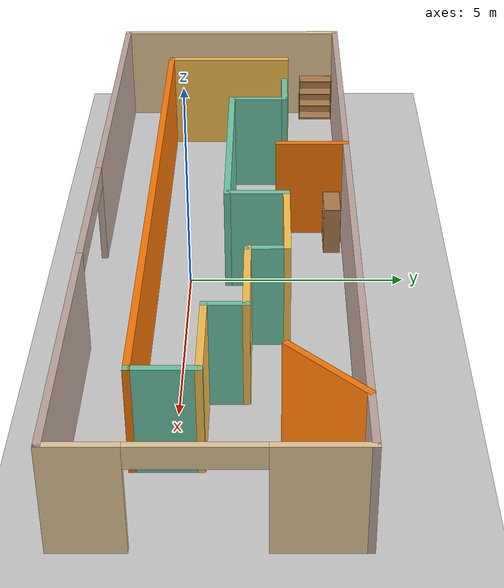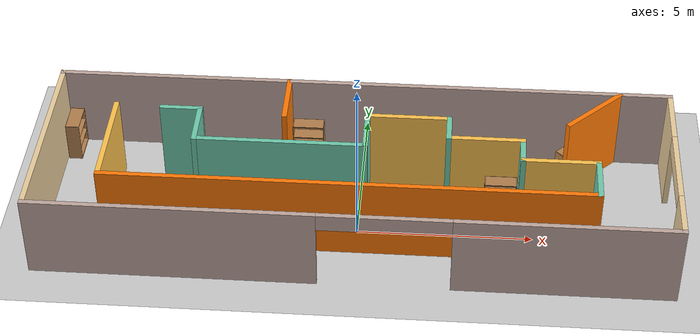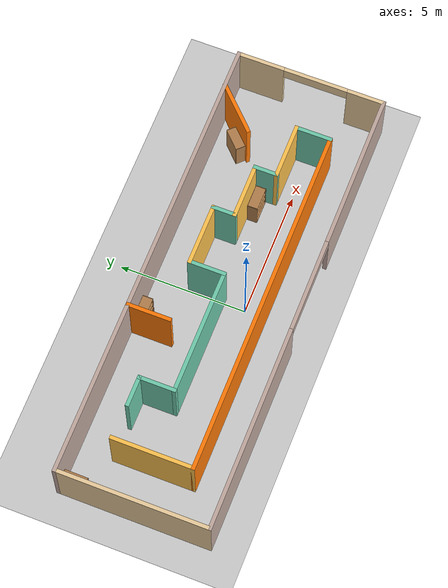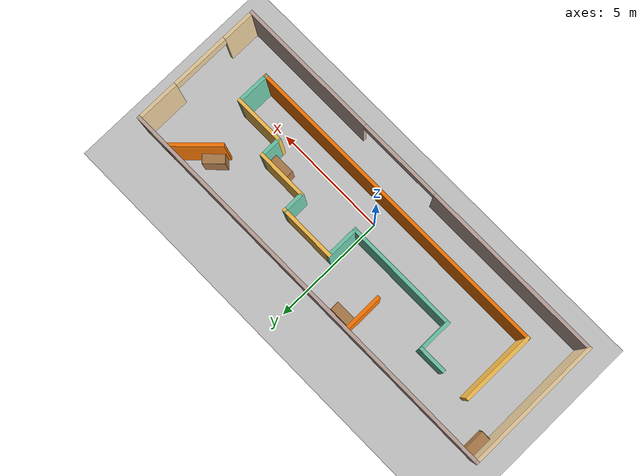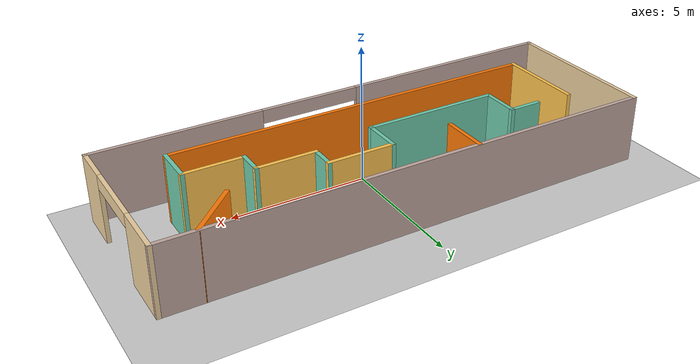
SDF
<sdf version="1.6">
 <world name="default">
  <light name="sun" type="directional">
   <pose>0 0 10 0 -0 0</pose>
   <diffuse>0.8 0.8 0.8 1</diffuse>
   <specular>0.2 0.2 0.2 1</specular>
   <attenuation>
    <range>1000</range>
    <constant>0.9</constant>
    <linear>0.01</linear>
    <quadratic>0.001</quadratic>
   </attenuation>
   <direction>-0.5 0.1 -0.9</direction>
  </light>
  <model name="ground_plane">
   <static>1</static>
   <link name="link">
    <collision name="collision">
     <geometry><plane><normal>0 0 1</normal><size>100 100</size></plane></geometry>
     <surface>
      <contact><collide_bitmask>65535</collide_bitmask></contact>
      <friction><ode><mu>100</mu><mu2>50</mu2></ode></friction>
     </surface>
    </collision>
    <visual name="visual">
     <cast_shadows>0</cast_shadows>
     <geometry><plane><normal>0 0 1</normal><size>100 100</size></plane></geometry>
     <material>
      <script><uri>file://media/materials/scripts/gazebo.material</uri><name>Gazebo/Grey</name></script>
     </material>
    </visual>
   </link>
  </model>
  <gravity>0 0 -9.8</gravity>
  <magnetic_field>6e-06 2.3e-05 -4.2e-05</magnetic_field>
  <atmosphere type="adiabatic"/>
  <physics name="default_physics" default="0" type="ode">
   <max_step_size>0.001</max_step_size>
   <real_time_factor>1</real_time_factor>
   <real_time_update_rate>1000</real_time_update_rate>
  </physics>
  <scene><ambient>0.4 0.4 0.4 1</ambient><background>0.7 0.7 0.7 1</background><shadows>1</shadows></scene>
  <spherical_coordinates>
   <surface_model>EARTH_WGS84</surface_model>
   <latitude_deg>0</latitude_deg>
   <longitude_deg>0</longitude_deg>
   <elevation>0</elevation>
   <heading_deg>0</heading_deg>
  </spherical_coordinates>
  <model name="model">
   <pose>-0.049973 0.789677 0 0 -0 0</pose>
   <link name="Wall_0">
    <collision name="Wall_0_Collision">
     <geometry><box><size>6 0.15 2.5</size></box></geometry>
     <pose>0 0 1.25 0 -0 0</pose>
    </collision>
    <visual name="Wall_0_Visual">
     <pose>0 0 1.25 0 -0 0</pose>
     <geometry><box><size>6 0.15 2.5</size></box></geometry>
     <material>
      <script><uri>file://media/materials/scripts/gazebo.material</uri><name>Gazebo/Grey</name></script>
      <ambient>0.921569 0.807843 0.615686 1</ambient>
     </material>
     <meta><layer>0</layer></meta>
    </visual>
    <pose>-8.925 -0.005476 0 0 0 -1.5708</pose>
   </link>
   <link name="Wall_1">
    <pose>0 -2.93048 0 0 -0 0</pose>
    <visual name="Wall_1_Visual_0">
     <pose>-4.96365 0 1.25 0 -0 0</pose>
     <geometry><box><size>8.0727 0.15 2.5</size></box></geometry>
     <material>
      <script><uri>file://media/materials/scripts/gazebo.material</uri><name>Gazebo/Grey</name></script>
      <ambient>0.760784 0.662745 0.627451 1</ambient>
     </material>
     <meta><layer>0</layer></meta>
    </visual>
    <collision name="Wall_1_Collision_0">
     <geometry><box><size>8.0727 0.15 2.5</size></box></geometry>
     <pose>-4.96365 0 1.25 0 -0 0</pose>
    </collision>
    <visual name="Wall_1_Visual_1">
     <pose>5.88424 0 1.25 0 -0 0</pose>
     <geometry><box><size>6.23151 0.15 2.5</size></box></geometry>
     <material>
      <script><uri>file://media/materials/scripts/gazebo.material</uri><name>Gazebo/Grey</name></script>
      <ambient>0.760784 0.662745 0.627451 1</ambient>
     </material>
     <meta><layer>0</layer></meta>
    </visual>
    <collision name="Wall_1_Collision_1">
     <geometry><box><size>6.23151 0.15 2.5</size></box></geometry>
     <pose>5.88424 0 1.25 0 -0 0</pose>
    </collision>
    <visual name="Wall_1_Visual_2">
     <pose>0.920593 0 2.25 0 -0 0</pose>
     <geometry><box><size>3.69579 0.15 0.5</size></box></geometry>
     <material>
      <script><uri>file://media/materials/scripts/gazebo.material</uri><name>Gazebo/Grey</name></script>
      <ambient>0.760784 0.662745 0.627451 1</ambient>
     </material>
     <meta><layer>0</layer></meta>
    </visual>
    <collision name="Wall_1_Collision_2">
     <geometry><box><size>3.69579 0.15 0.5</size></box></geometry>
     <pose>0.920593 0 2.25 0 -0 0</pose>
    </collision>
   </link>
   <link name="Wall_10">
    <collision name="Wall_10_Collision">
     <geometry><box><size>2.25 0.15 2.5</size></box></geometry>
     <pose>0 0 1.25 0 -0 0</pose>
    </collision>
    <visual name="Wall_10_Visual">
     <pose>0 0 1.25 0 -0 0</pose>
     <geometry><box><size>2.25 0.15 2.5</size></box></geometry>
     <material>
      <script><uri>file://media/materials/scripts/gazebo.material</uri><name>Gazebo/Grey</name></script>
      <ambient>1 0.764706 0.305882 1</ambient>
     </material>
     <meta><layer>0</layer></meta>
    </visual>
    <pose>3.60534 0.611574 0 0 -0 3.14159</pose>
   </link>
   <link name="Wall_11">
    <collision name="Wall_11_Collision">
     <geometry><box><size>1 0.15 2.5</size></box></geometry>
     <pose>0 0 1.25 0 -0 0</pose>
    </collision>
    <visual name="Wall_11_Visual">
     <pose>0 0 1.25 0 -0 0</pose>
     <geometry><box><size>1 0.15 2.5</size></box></geometry>
     <material>
      <script><uri>file://media/materials/scripts/gazebo.material</uri><name>Gazebo/Grey</name></script>
      <ambient>0.435294 0.796078 0.67451 1</ambient>
     </material>
     <meta><layer>0</layer></meta>
    </visual>
    <pose>2.55533 1.03657 0 0 -0 1.5708</pose>
   </link>
   <link name="Wall_12">
    <collision name="Wall_12_Collision">
     <geometry><box><size>2.5 0.15 2.5</size></box></geometry>
     <pose>0 0 1.25 0 -0 0</pose>
    </collision>
    <visual name="Wall_12_Visual">
     <pose>0 0 1.25 0 -0 0</pose>
     <geometry><box><size>2.5 0.15 2.5</size></box></geometry>
     <material>
      <script><uri>file://media/materials/scripts/gazebo.material</uri><name>Gazebo/Grey</name></script>
      <ambient>1 0.764706 0.305882 1</ambient>
     </material>
     <meta><layer>0</layer></meta>
    </visual>
    <pose>1.38034 1.46157 0 0 -0 3.14159</pose>
   </link>
   <link name="Wall_13">
    <collision name="Wall_13_Collision">
     <geometry><box><size>1.5 0.15 2.5</size></box></geometry>
     <pose>0 0 1.25 0 -0 0</pose>
    </collision>
    <visual name="Wall_13_Visual">
     <pose>0 0 1.25 0 -0 0</pose>
     <geometry><box><size>1.5 0.15 2.5</size></box></geometry>
     <material>
      <script><uri>file://media/materials/scripts/gazebo.material</uri><name>Gazebo/Grey</name></script>
      <ambient>0.435294 0.796078 0.67451 1</ambient>
     </material>
     <meta><layer>0</layer></meta>
    </visual>
    <pose>0.205335 0.786574 0 0 0 -1.5708</pose>
   </link>
   <link name="Wall_14">
    <collision name="Wall_14_Collision">
     <geometry><box><size>5 0.15 2.5</size></box></geometry>
     <pose>0 0 1.25 0 -0 0</pose>
    </collision>
    <visual name="Wall_14_Visual">
     <pose>0 0 1.25 0 -0 0</pose>
     <geometry><box><size>5 0.15 2.5</size></box></geometry>
     <material>
      <script><uri>file://media/materials/scripts/gazebo.material</uri><name>Gazebo/Grey</name></script>
      <ambient>0.435294 0.796078 0.67451 1</ambient>
     </material>
     <meta><layer>0</layer></meta>
    </visual>
    <pose>-2.21966 0.111574 0 0 -0 3.14159</pose>
   </link>
   <link name="Wall_15">
    <collision name="Wall_15_Collision">
     <geometry><box><size>1.5 0.15 2.5</size></box></geometry>
     <pose>0 0 1.25 0 -0 0</pose>
    </collision>
    <visual name="Wall_15_Visual">
     <pose>0 0 1.25 0 -0 0</pose>
     <geometry><box><size>1.5 0.15 2.5</size></box></geometry>
     <material>
      <script><uri>file://media/materials/scripts/gazebo.material</uri><name>Gazebo/Grey</name></script>
      <ambient>0.435294 0.796078 0.67451 1</ambient>
     </material>
     <meta><layer>0</layer></meta>
    </visual>
    <pose>-4.64466 0.786574 0 0 -0 1.5708</pose>
   </link>
   <link name="Wall_16">
    <collision name="Wall_16_Collision">
     <geometry><box><size>1.25 0.15 2.5</size></box></geometry>
     <pose>0 0 1.25 0 -0 0</pose>
    </collision>
    <visual name="Wall_16_Visual">
     <pose>0 0 1.25 0 -0 0</pose>
     <geometry><box><size>1.25 0.15 2.5</size></box></geometry>
     <material>
      <script><uri>file://media/materials/scripts/gazebo.material</uri><name>Gazebo/Grey</name></script>
      <ambient>0.435294 0.796078 0.67451 1</ambient>
     </material>
     <meta><layer>0</layer></meta>
    </visual>
    <pose>-5.19466 1.46157 0 0 -0 3.14159</pose>
   </link>
   <link name="Wall_18">
    <collision name="Wall_18_Collision">
     <geometry><box><size>2.25 0.15 2.5</size></box></geometry>
     <pose>0 0 1.25 0 -0 0</pose>
    </collision>
    <visual name="Wall_18_Visual">
     <pose>0 0 1.25 0 -0 0</pose>
     <geometry><box><size>2.25 0.15 2.5</size></box></geometry>
     <material>
      <script><uri>file://media/materials/scripts/gazebo.material</uri><name>Gazebo/Grey</name></script>
      <ambient>0.996078 0.47451 0.0196078 1</ambient>
     </material>
     <meta><layer>0</layer></meta>
    </visual>
    <pose>6.7251 2.15695 0 0 0 -2.35619</pose>
   </link>
   <link name="Wall_2">
    <pose>8.925 -0.005476 0 0 -0 1.5708</pose>
    <visual name="Wall_2_Visual_0">
     <pose>-2.23866 0 1.25 0 -0 0</pose>
     <geometry><box><size>1.52268 0.15 2.5</size></box></geometry>
     <material>
      <script><uri>file://media/materials/scripts/gazebo.material</uri><name>Gazebo/Grey</name></script>
      <ambient>0.921569 0.807843 0.615686 1</ambient>
     </material>
     <meta><layer>0</layer></meta>
    </visual>
    <collision name="Wall_2_Collision_0">
     <geometry><box><size>1.52268 0.15 2.5</size></box></geometry>
     <pose>-2.23866 0 1.25 0 -0 0</pose>
    </collision>
    <visual name="Wall_2_Visual_1">
     <pose>2.036 0 1.25 0 -0 0</pose>
     <geometry><box><size>1.928 0.15 2.5</size></box></geometry>
     <material>
      <script><uri>file://media/materials/scripts/gazebo.material</uri><name>Gazebo/Grey</name></script>
      <ambient>0.921569 0.807843 0.615686 1</ambient>
     </material>
     <meta><layer>0</layer></meta>
    </visual>
    <collision name="Wall_2_Collision_1">
     <geometry><box><size>1.928 0.15 2.5</size></box></geometry>
     <pose>2.036 0 1.25 0 -0 0</pose>
    </collision>
    <visual name="Wall_2_Visual_2">
     <pose>-0.202661 0 2.25 0 -0 0</pose>
     <geometry><box><size>2.54931 0.15 0.5</size></box></geometry>
     <material>
      <script><uri>file://media/materials/scripts/gazebo.material</uri><name>Gazebo/Grey</name></script>
      <ambient>0.921569 0.807843 0.615686 1</ambient>
     </material>
     <meta><layer>0</layer></meta>
    </visual>
    <collision name="Wall_2_Collision_2">
     <geometry><box><size>2.54931 0.15 0.5</size></box></geometry>
     <pose>-0.202661 0 2.25 0 -0 0</pose>
    </collision>
   </link>
   <link name="Wall_20">
    <collision name="Wall_20_Collision">
     <geometry><box><size>1.75 0.15 2.5</size></box></geometry>
     <pose>0 0 1.25 0 -0 0</pose>
    </collision>
    <visual name="Wall_20_Visual">
     <pose>0 0 1.25 0 -0 0</pose>
     <geometry><box><size>1.75 0.15 2.5</size></box></geometry>
     <material>
      <script><uri>file://media/materials/scripts/gazebo.material</uri><name>Gazebo/Grey</name></script>
      <ambient>0.996078 0.47451 0.0196078 1</ambient>
     </material>
     <meta><layer>0</layer></meta>
    </visual>
    <pose>-2.18695 2.09941 0 0 0 -1.5708</pose>
   </link>
   <link name="Wall_3">
    <collision name="Wall_3_Collision">
     <geometry><box><size>18 0.15 2.5</size></box></geometry>
     <pose>0 0 1.25 0 -0 0</pose>
    </collision>
    <visual name="Wall_3_Visual">
     <pose>0 0 1.25 0 -0 0</pose>
     <geometry><box><size>18 0.15 2.5</size></box></geometry>
     <material>
      <script><uri>file://media/materials/scripts/gazebo.material</uri><name>Gazebo/Grey</name></script>
      <ambient>0.760784 0.662745 0.627451 1</ambient>
     </material>
     <meta><layer>0</layer></meta>
    </visual>
    <pose>0 2.91952 0 0 -0 3.14159</pose>
   </link>
   <link name="Wall_5">
    <collision name="Wall_5_Collision">
     <geometry><box><size>3.25 0.15 2.5</size></box></geometry>
     <pose>0 0 1.25 0 -0 0</pose>
    </collision>
    <visual name="Wall_5_Visual">
     <pose>0 0 1.25 0 -0 0</pose>
     <geometry><box><size>3.25 0.15 2.5</size></box></geometry>
     <material>
      <script><uri>file://media/materials/scripts/gazebo.material</uri><name>Gazebo/Grey</name></script>
      <ambient>1 0.764706 0.305882 1</ambient>
     </material>
     <meta><layer>0</layer></meta>
    </visual>
    <pose>-7.09466 -0.038426 0 0 0 -1.5708</pose>
   </link>
   <link name="Wall_6">
    <collision name="Wall_6_Collision">
     <geometry><box><size>14 0.15 2.5</size></box></geometry>
     <pose>0 0 1.25 0 -0 0</pose>
    </collision>
    <visual name="Wall_6_Visual">
     <pose>0 0 1.25 0 -0 0</pose>
     <geometry><box><size>14 0.15 2.5</size></box></geometry>
     <material>
      <script><uri>file://media/materials/scripts/gazebo.material</uri><name>Gazebo/Grey</name></script>
      <ambient>0.996078 0.47451 0.0196078 1</ambient>
     </material>
     <meta><layer>0</layer></meta>
    </visual>
    <pose>-0.169665 -1.58843 0 0 -0 0</pose>
   </link>
   <link name="Wall_7">
    <collision name="Wall_7_Collision">
     <geometry><box><size>1.5 0.15 2.5</size></box></geometry>
     <pose>0 0 1.25 0 -0 0</pose>
    </collision>
    <visual name="Wall_7_Visual">
     <pose>0 0 1.25 0 -0 0</pose>
     <geometry><box><size>1.5 0.15 2.5</size></box></geometry>
     <material>
      <script><uri>file://media/materials/scripts/gazebo.material</uri><name>Gazebo/Grey</name></script>
      <ambient>0.435294 0.796078 0.67451 1</ambient>
     </material>
     <meta><layer>0</layer></meta>
    </visual>
    <pose>6.75533 -0.913426 0 0 -0 1.5708</pose>
   </link>
   <link name="Wall_8">
    <collision name="Wall_8_Collision">
     <geometry><box><size>2.25 0.15 2.5</size></box></geometry>
     <pose>0 0 1.25 0 -0 0</pose>
    </collision>
    <visual name="Wall_8_Visual">
     <pose>0 0 1.25 0 -0 0</pose>
     <geometry><box><size>2.25 0.15 2.5</size></box></geometry>
     <material>
      <script><uri>file://media/materials/scripts/gazebo.material</uri><name>Gazebo/Grey</name></script>
      <ambient>1 0.764706 0.305882 1</ambient>
     </material>
     <meta><layer>0</layer></meta>
    </visual>
    <pose>5.70533 -0.238426 0 0 -0 3.14159</pose>
   </link>
   <link name="Wall_9">
    <collision name="Wall_9_Collision">
     <geometry><box><size>1 0.15 2.5</size></box></geometry>
     <pose>0 0 1.25 0 -0 0</pose>
    </collision>
    <visual name="Wall_9_Visual">
     <pose>0 0 1.25 0 -0 0</pose>
     <geometry><box><size>1 0.15 2.5</size></box></geometry>
     <material>
      <script><uri>file://media/materials/scripts/gazebo.material</uri><name>Gazebo/Grey</name></script>
      <ambient>0.435294 0.796078 0.67451 1</ambient>
     </material>
     <meta><layer>0</layer></meta>
    </visual>
    <pose>4.65534 0.186574 0 0 -0 1.5708</pose>
   </link>
   <static>1</static>
  </model>
  <model name="bookshelf">
   <static>1</static>
   <link name="link">
    <inertial><mass>1</mass></inertial>
    <collision name="back">
     <pose>0 0.005 0.6 0 -0 0</pose>
     <geometry><box><size>0.9 0.01 1.2</size></box></geometry>
    </collision>
    <visual name="visual1">
     <pose>0 0.005 0.6 0 -0 0</pose>
     <geometry><box><size>0.9 0.01 1.2</size></box></geometry>
     <material>
      <script><uri>file://media/materials/scripts/gazebo.material</uri><name>Gazebo/Wood</name></script>
     </material>
    </visual>
    <collision name="left_side">
     <pose>0.45 -0.195 0.6 0 -0 0</pose>
     <geometry><box><size>0.02 0.4 1.2</size></box></geometry>
    </collision>
    <visual name="visual2">
     <pose>0.45 -0.195 0.6 0 -0 0</pose>
     <geometry><box><size>0.02 0.4 1.2</size></box></geometry>
     <material>
      <script><uri>file://media/materials/scripts/gazebo.material</uri><name>Gazebo/Wood</name></script>
     </material>
    </visual>
    <collision name="right_side">
     <pose>-0.45 -0.195 0.6 0 -0 0</pose>
     <geometry><box><size>0.02 0.4 1.2</size></box></geometry>
    </collision>
    <visual name="visual3">
     <pose>-0.45 -0.195 0.6 0 -0 0</pose>
     <geometry><box><size>0.02 0.4 1.2</size></box></geometry>
     <material>
      <script><uri>file://media/materials/scripts/gazebo.material</uri><name>Gazebo/Wood</name></script>
     </material>
    </visual>
    <collision name="bottom">
     <pose>0 -0.195 0.03 0 -0 0</pose>
     <geometry><box><size>0.88 0.4 0.06</size></box></geometry>
    </collision>
    <visual name="visual4">
     <pose>0 -0.195 0.03 0 -0 0</pose>
     <geometry><box><size>0.88 0.4 0.06</size></box></geometry>
     <material>
      <script><uri>file://media/materials/scripts/gazebo.material</uri><name>Gazebo/Wood</name></script>
     </material>
    </visual>
    <collision name="top">
     <pose>0 -0.195 1.19 0 -0 0</pose>
     <geometry><box><size>0.88 0.4 0.02</size></box></geometry>
    </collision>
    <visual name="visual5">
     <pose>0 -0.195 1.19 0 -0 0</pose>
     <geometry><box><size>0.88 0.4 0.02</size></box></geometry>
     <material>
      <script><uri>file://media/materials/scripts/gazebo.material</uri><name>Gazebo/Wood</name></script>
     </material>
    </visual>
    <collision name="low_shelf">
     <pose>0 -0.195 0.43 0 -0 0</pose>
     <geometry><box><size>0.88 0.4 0.02</size></box></geometry>
    </collision>
    <visual name="visual6">
     <pose>0 -0.195 0.43 0 -0 0</pose>
     <geometry><box><size>0.88 0.4 0.02</size></box></geometry>
     <material>
      <script><uri>file://media/materials/scripts/gazebo.material</uri><name>Gazebo/Wood</name></script>
     </material>
    </visual>
    <collision name="high_shelf">
     <pose>0 -0.195 0.8 0 -0 0</pose>
     <geometry><box><size>0.88 0.4 0.02</size></box></geometry>
    </collision>
    <visual name="visual7">
     <pose>0 -0.195 0.8 0 -0 0</pose>
     <geometry><box><size>0.88 0.4 0.02</size></box></geometry>
     <material>
      <script><uri>file://media/materials/scripts/gazebo.material</uri><name>Gazebo/Wood</name></script>
     </material>
    </visual>
   </link>
   <pose>4.04311 1.30052 0 0 -0 0</pose>
  </model>
  <model name="bookshelf_0">
   <static>1</static>
   <link name="link">
    <inertial><mass>1</mass></inertial>
    <collision name="back">
     <pose>0 0.005 0.6 0 -0 0</pose>
     <geometry><box><size>0.9 0.01 1.2</size></box></geometry>
    </collision>
    <visual name="visual1">
     <pose>0 0.005 0.6 0 -0 0</pose>
     <geometry><box><size>0.9 0.01 1.2</size></box></geometry>
     <material>
      <script><uri>file://media/materials/scripts/gazebo.material</uri><name>Gazebo/Wood</name></script>
     </material>
    </visual>
    <collision name="left_side">
     <pose>0.45 -0.195 0.6 0 -0 0</pose>
     <geometry><box><size>0.02 0.4 1.2</size></box></geometry>
    </collision>
    <visual name="visual2">
     <pose>0.45 -0.195 0.6 0 -0 0</pose>
     <geometry><box><size>0.02 0.4 1.2</size></box></geometry>
     <material>
      <script><uri>file://media/materials/scripts/gazebo.material</uri><name>Gazebo/Wood</name></script>
     </material>
    </visual>
    <collision name="right_side">
     <pose>-0.45 -0.195 0.6 0 -0 0</pose>
     <geometry><box><size>0.02 0.4 1.2</size></box></geometry>
    </collision>
    <visual name="visual3">
     <pose>-0.45 -0.195 0.6 0 -0 0</pose>
     <geometry><box><size>0.02 0.4 1.2</size></box></geometry>
     <material>
      <script><uri>file://media/materials/scripts/gazebo.material</uri><name>Gazebo/Wood</name></script>
     </material>
    </visual>
    <collision name="bottom">
     <pose>0 -0.195 0.03 0 -0 0</pose>
     <geometry><box><size>0.88 0.4 0.06</size></box></geometry>
    </collision>
    <visual name="visual4">
     <pose>0 -0.195 0.03 0 -0 0</pose>
     <geometry><box><size>0.88 0.4 0.06</size></box></geometry>
     <material>
      <script><uri>file://media/materials/scripts/gazebo.material</uri><name>Gazebo/Wood</name></script>
     </material>
    </visual>
    <collision name="top">
     <pose>0 -0.195 1.19 0 -0 0</pose>
     <geometry><box><size>0.88 0.4 0.02</size></box></geometry>
    </collision>
    <visual name="visual5">
     <pose>0 -0.195 1.19 0 -0 0</pose>
     <geometry><box><size>0.88 0.4 0.02</size></box></geometry>
     <material>
      <script><uri>file://media/materials/scripts/gazebo.material</uri><name>Gazebo/Wood</name></script>
     </material>
    </visual>
    <collision name="low_shelf">
     <pose>0 -0.195 0.43 0 -0 0</pose>
     <geometry><box><size>0.88 0.4 0.02</size></box></geometry>
    </collision>
    <visual name="visual6">
     <pose>0 -0.195 0.43 0 -0 0</pose>
     <geometry><box><size>0.88 0.4 0.02</size></box></geometry>
     <material>
      <script><uri>file://media/materials/scripts/gazebo.material</uri><name>Gazebo/Wood</name></script>
     </material>
    </visual>
    <collision name="high_shelf">
     <pose>0 -0.195 0.8 0 -0 0</pose>
     <geometry><box><size>0.88 0.4 0.02</size></box></geometry>
    </collision>
    <visual name="visual7">
     <pose>0 -0.195 0.8 0 -0 0</pose>
     <geometry><box><size>0.88 0.4 0.02</size></box></geometry>
     <material>
      <script><uri>file://media/materials/scripts/gazebo.material</uri><name>Gazebo/Wood</name></script>
     </material>
    </visual>
   </link>
   <pose>-1.67469 3.5696 0 0 -0 0</pose>
  </model>
  <model name="bookshelf_1">
   <static>1</static>
   <link name="link">
    <inertial><mass>1</mass></inertial>
    <collision name="back">
     <pose>0 0.005 0.6 0 -0 0</pose>
     <geometry><box><size>0.9 0.01 1.2</size></box></geometry>
    </collision>
    <visual name="visual1">
     <pose>0 0.005 0.6 0 -0 0</pose>
     <geometry><box><size>0.9 0.01 1.2</size></box></geometry>
     <material>
      <script><uri>file://media/materials/scripts/gazebo.material</uri><name>Gazebo/Wood</name></script>
     </material>
    </visual>
    <collision name="left_side">
     <pose>0.45 -0.195 0.6 0 -0 0</pose>
     <geometry><box><size>0.02 0.4 1.2</size></box></geometry>
    </collision>
    <visual name="visual2">
     <pose>0.45 -0.195 0.6 0 -0 0</pose>
     <geometry><box><size>0.02 0.4 1.2</size></box></geometry>
     <material>
      <script><uri>file://media/materials/scripts/gazebo.material</uri><name>Gazebo/Wood</name></script>
     </material>
    </visual>
    <collision name="right_side">
     <pose>-0.45 -0.195 0.6 0 -0 0</pose>
     <geometry><box><size>0.02 0.4 1.2</size></box></geometry>
    </collision>
    <visual name="visual3">
     <pose>-0.45 -0.195 0.6 0 -0 0</pose>
     <geometry><box><size>0.02 0.4 1.2</size></box></geometry>
     <material>
      <script><uri>file://media/materials/scripts/gazebo.material</uri><name>Gazebo/Wood</name></script>
     </material>
    </visual>
    <collision name="bottom">
     <pose>0 -0.195 0.03 0 -0 0</pose>
     <geometry><box><size>0.88 0.4 0.06</size></box></geometry>
    </collision>
    <visual name="visual4">
     <pose>0 -0.195 0.03 0 -0 0</pose>
     <geometry><box><size>0.88 0.4 0.06</size></box></geometry>
     <material>
      <script><uri>file://media/materials/scripts/gazebo.material</uri><name>Gazebo/Wood</name></script>
     </material>
    </visual>
    <collision name="top">
     <pose>0 -0.195 1.19 0 -0 0</pose>
     <geometry><box><size>0.88 0.4 0.02</size></box></geometry>
    </collision>
    <visual name="visual5">
     <pose>0 -0.195 1.19 0 -0 0</pose>
     <geometry><box><size>0.88 0.4 0.02</size></box></geometry>
     <material>
      <script><uri>file://media/materials/scripts/gazebo.material</uri><name>Gazebo/Wood</name></script>
     </material>
    </visual>
    <collision name="low_shelf">
     <pose>0 -0.195 0.43 0 -0 0</pose>
     <geometry><box><size>0.88 0.4 0.02</size></box></geometry>
    </collision>
    <visual name="visual6">
     <pose>0 -0.195 0.43 0 -0 0</pose>
     <geometry><box><size>0.88 0.4 0.02</size></box></geometry>
     <material>
      <script><uri>file://media/materials/scripts/gazebo.material</uri><name>Gazebo/Wood</name></script>
     </material>
    </visual>
    <collision name="high_shelf">
     <pose>0 -0.195 0.8 0 -0 0</pose>
     <geometry><box><size>0.88 0.4 0.02</size></box></geometry>
    </collision>
    <visual name="visual7">
     <pose>0 -0.195 0.8 0 -0 0</pose>
     <geometry><box><size>0.88 0.4 0.02</size></box></geometry>
     <material>
      <script><uri>file://media/materials/scripts/gazebo.material</uri><name>Gazebo/Wood</name></script>
     </material>
    </visual>
   </link>
   <pose>5.95617 2.87285 0 0 -0 0.779427</pose>
  </model>
  <model name="bookshelf_2">
   <static>1</static>
   <link name="link">
    <inertial><mass>1</mass></inertial>
    <collision name="back">
     <pose>0 0.005 0.6 0 -0 0</pose>
     <geometry><box><size>0.9 0.01 1.2</size></box></geometry>
    </collision>
    <visual name="visual1">
     <pose>0 0.005 0.6 0 -0 0</pose>
     <geometry><box><size>0.9 0.01 1.2</size></box></geometry>
     <material>
      <script><uri>file://media/materials/scripts/gazebo.material</uri><name>Gazebo/Wood</name></script>
     </material>
    </visual>
    <collision name="left_side">
     <pose>0.45 -0.195 0.6 0 -0 0</pose>
     <geometry><box><size>0.02 0.4 1.2</size></box></geometry>
    </collision>
    <visual name="visual2">
     <pose>0.45 -0.195 0.6 0 -0 0</pose>
     <geometry><box><size>0.02 0.4 1.2</size></box></geometry>
     <material>
      <script><uri>file://media/materials/scripts/gazebo.material</uri><name>Gazebo/Wood</name></script>
     </material>
    </visual>
    <collision name="right_side">
     <pose>-0.45 -0.195 0.6 0 -0 0</pose>
     <geometry><box><size>0.02 0.4 1.2</size></box></geometry>
    </collision>
    <visual name="visual3">
     <pose>-0.45 -0.195 0.6 0 -0 0</pose>
     <geometry><box><size>0.02 0.4 1.2</size></box></geometry>
     <material>
      <script><uri>file://media/materials/scripts/gazebo.material</uri><name>Gazebo/Wood</name></script>
     </material>
    </visual>
    <collision name="bottom">
     <pose>0 -0.195 0.03 0 -0 0</pose>
     <geometry><box><size>0.88 0.4 0.06</size></box></geometry>
    </collision>
    <visual name="visual4">
     <pose>0 -0.195 0.03 0 -0 0</pose>
     <geometry><box><size>0.88 0.4 0.06</size></box></geometry>
     <material>
      <script><uri>file://media/materials/scripts/gazebo.material</uri><name>Gazebo/Wood</name></script>
     </material>
    </visual>
    <collision name="top">
     <pose>0 -0.195 1.19 0 -0 0</pose>
     <geometry><box><size>0.88 0.4 0.02</size></box></geometry>
    </collision>
    <visual name="visual5">
     <pose>0 -0.195 1.19 0 -0 0</pose>
     <geometry><box><size>0.88 0.4 0.02</size></box></geometry>
     <material>
      <script><uri>file://media/materials/scripts/gazebo.material</uri><name>Gazebo/Wood</name></script>
     </material>
    </visual>
    <collision name="low_shelf">
     <pose>0 -0.195 0.43 0 -0 0</pose>
     <geometry><box><size>0.88 0.4 0.02</size></box></geometry>
    </collision>
    <visual name="visual6">
     <pose>0 -0.195 0.43 0 -0 0</pose>
     <geometry><box><size>0.88 0.4 0.02</size></box></geometry>
     <material>
      <script><uri>file://media/materials/scripts/gazebo.material</uri><name>Gazebo/Wood</name></script>
     </material>
    </visual>
    <collision name="high_shelf">
     <pose>0 -0.195 0.8 0 -0 0</pose>
     <geometry><box><size>0.88 0.4 0.02</size></box></geometry>
    </collision>
    <visual name="visual7">
     <pose>0 -0.195 0.8 0 -0 0</pose>
     <geometry><box><size>0.88 0.4 0.02</size></box></geometry>
     <material>
      <script><uri>file://media/materials/scripts/gazebo.material</uri><name>Gazebo/Wood</name></script>
     </material>
    </visual>
   </link>
   <pose>-8.86238 3.17516 0 0 -0 1.56583</pose>
  </model>
 </world>
</sdf>
